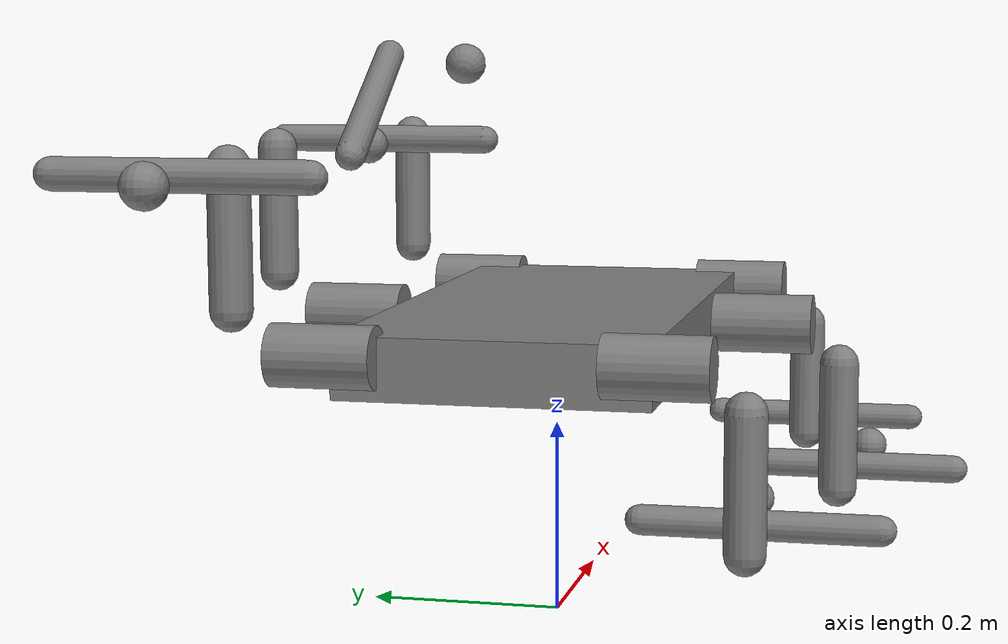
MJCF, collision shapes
<mujoco model="elspider_air">
    <compiler angle="radian" meshdir="../meshes" autolimits="true" />

    <option cone="elliptic" impratio="100" />

    <default>
      <default class="el4">
        <geom friction="0.6" margin="0.001" condim="6"/>
        <joint damping="0.1" armature="0.01" frictionloss="0.2"/>
        <motor ctrlrange="-33.5 33.5"/>
        <default class="haa">
          <joint axis="0 0 1"/>
        </default>
        <default class="hfe">
          <joint axis="0 0 1"/>
        </default>
        <default class="kfe">
          <joint axis="0 0 1"/>
        </default>
        <default class="visual">
          <geom type="mesh" contype="0" conaffinity="0" group="2"/>
        </default>
        <default class="collision">
          <geom group="3"/>
          <default class="foot">
            <geom type="sphere" size="0.02" priority="1" condim="6"
              friction="0.6 0.02 0.01"/>
          </default>
        </default>
      </default>
    </default>

    <asset>
      <material name="metal" rgba=".9 .95 .95 1" />
      <material name="black" rgba="0 0 0 1" />
      <material name="gray" rgba="0.4 0.4 0.4 1" />
      <material name="dark_gray" rgba="0.2 0.2 0.2 1" />

      <!-- Mesh assets for all leg parts -->
      <mesh file="RF_HIP.STL" />
      <mesh file="RF_THIGH.STL" />
      <mesh file="RF_SHANK.STL" />
      <mesh file="RF_FOOT.STL" />

      <mesh file="RM_HIP.STL" />
      <mesh file="RM_THIGH.STL" />
      <mesh file="RM_SHANK.STL" />
      <mesh file="RM_FOOT.STL" />

      <mesh file="RB_HIP.STL" />
      <mesh file="RB_THIGH.STL" />
      <mesh file="RB_SHANK.STL" />
      <mesh file="RB_FOOT.STL" />

      <mesh file="LF_HIP.STL" />
      <mesh file="LF_THIGH.STL" />
      <mesh file="LF_SHANK.STL" />
      <mesh file="LF_FOOT.STL" />

      <mesh file="LM_HIP.STL" />
      <mesh file="LM_THIGH.STL" />
      <mesh file="LM_SHANK.STL" />
      <mesh file="LM_FOOT.STL" />

      <mesh file="LB_HIP.STL" />
      <mesh file="LB_THIGH.STL" />
      <mesh file="LB_SHANK.STL" />
      <mesh file="LB_FOOT.STL" />
    </asset>

    <worldbody>
      <body name="base" pos="0 0 0.3" childclass="el4">
        <inertial pos="0 0 0" mass="5.0" diaginertia="0.1 0.1 0.05" />
        <freejoint />
        <geom type="box" size="0.3 0.15 0.03" class="collision" />
        <site name="imu" pos="0 0 0" />

        <!-- RF leg: Right Front -->
        <body name="RF_HIP" pos="0.3 -0.08 0.011">
          <inertial pos="0 -0.12 0" mass="0.678" diaginertia="0.001 0.001 0.0005" />
          <joint name="RF_HAA" class="haa" range="-1.57 1.57" />
          <geom mesh="RF_HIP" material="gray" class="visual" />
          <geom type="cylinder" size="0.03 0.05" pos="0 -0.075 0" quat="0.707107 0.707107 0 0" class="collision" />
          <body name="RF_THIGH" pos="0.0355 -0.14999 -0.045056" quat="0 -0.707107 0 0.707107">
            <inertial pos="0.114 0 0" mass="1.152" diaginertia="0.006 0.006 0.001" />
            <joint name="RF_HFE" class="hfe" range="-1.57 1.57" />
            <geom mesh="RF_THIGH" material="gray" class="visual" />
            <geom type="capsule" size="0.02 0.065" pos="0.065 0 0" quat="0.707107 0 0.707107 0" class="collision" />
            <body name="RF_SHANK" pos="0.13 0 0" quat="0 0 0.707107 0.707107">
              <inertial pos="0 -0.07 0" mass="0.241" diaginertia="0.0015 0.0015 0.0001" />
              <joint name="RF_KFE" class="kfe" range="-2.8 2.8" />
              <geom mesh="RF_SHANK" material="gray" class="visual" />
              <geom type="capsule" size="0.015 0.116" pos="0 -0.116 0" class="collision" />
              <body name="RF_FOOT" pos="0 -0.232 0.018">
                <inertial pos="0 0 0" mass="0.05" diaginertia="0.0001 0.0001 0.0001" />
                <geom mesh="RF_FOOT" material="dark_gray" class="visual" />
                <geom name="RF_foot" class="foot" pos="0 0 0" />
              </body>
            </body>
          </body>
        </body>

        <!-- RM leg: Right Middle -->
        <body name="RM_HIP" pos="0 -0.14 0.011">
          <inertial pos="0 -0.12 0" mass="0.678" diaginertia="0.001 0.001 0.0005" />
          <joint name="RM_HAA" class="haa" range="-1.57 1.57" />
          <geom mesh="RM_HIP" material="gray" class="visual" />
          <geom type="cylinder" size="0.03 0.05" pos="0 -0.075 0" quat="0.707107 0.707107 0 0" class="collision" />
          <body name="RM_THIGH" pos="0.0355 -0.14999 -0.045056" quat="0 -0.707107 0 0.707107">
            <inertial pos="0.114 0 0" mass="1.152" diaginertia="0.006 0.006 0.001" />
            <joint name="RM_HFE" class="hfe" range="-1.57 1.57" />
            <geom mesh="RM_THIGH" material="gray" class="visual" />
            <geom type="capsule" size="0.02 0.065" pos="0.065 0 0" quat="0.707107 0 0.707107 0" class="collision" />
            <body name="RM_SHANK" pos="0.13 0 0" quat="0 0 0.707107 0.707107">
              <inertial pos="0 -0.07 0" mass="0.241" diaginertia="0.0015 0.0015 0.0001" />
              <joint name="RM_KFE" class="kfe" range="-2.8 2.8" />
              <geom mesh="RM_SHANK" material="gray" class="visual" />
              <geom type="capsule" size="0.015 0.116" pos="0 -0.116 0" class="collision" />
              <body name="RM_FOOT" pos="0 -0.232 0.018">
                <inertial pos="0 0 0" mass="0.05" diaginertia="0.0001 0.0001 0.0001" />
                <geom mesh="RM_FOOT" material="dark_gray" class="visual" />
                <geom name="RM_foot" class="foot" pos="0 0 0" />
              </body>
            </body>
          </body>
        </body>

        <!-- RB leg: Right Back -->
        <body name="RB_HIP" pos="-0.3 -0.08 0.011">
          <inertial pos="0 -0.12 0" mass="0.678" diaginertia="0.001 0.001 0.0005" />
          <joint name="RB_HAA" class="haa" range="-1.57 1.57" />
          <geom mesh="RB_HIP" material="gray" class="visual" />
          <geom type="cylinder" size="0.03 0.05" pos="0 -0.075 0" quat="0.707107 0.707107 0 0" class="collision" />
          <body name="RB_THIGH" pos="0.0355 -0.14999 -0.045056" quat="0 -0.707107 0 0.707107">
            <inertial pos="0.114 0 0" mass="1.152" diaginertia="0.006 0.006 0.001" />
            <joint name="RB_HFE" class="hfe" range="-1.57 1.57" />
            <geom mesh="RB_THIGH" material="gray" class="visual" />
            <geom type="capsule" size="0.02 0.065" pos="0.065 0 0" quat="0.707107 0 0.707107 0" class="collision" />
            <body name="RB_SHANK" pos="0.13 0 0" quat="0 0 0.707107 0.707107">
              <inertial pos="0 -0.07 0" mass="0.241" diaginertia="0.0015 0.0015 0.0001" />
              <joint name="RB_KFE" class="kfe" range="-2.8 2.8" />
              <geom mesh="RB_SHANK" material="gray" class="visual" />
              <geom type="capsule" size="0.015 0.116" pos="0 -0.116 0" class="collision" />
              <body name="RB_FOOT" pos="0 -0.232 -0.018">
                <inertial pos="0 0 0" mass="0.05" diaginertia="0.0001 0.0001 0.0001" />
                <geom mesh="RB_FOOT" material="dark_gray" class="visual" />
                <geom name="RB_foot" class="foot" pos="0 0 0" />
              </body>
            </body>
          </body>
        </body>

        <!-- LF leg: Left Front -->
        <body name="LF_HIP" pos="0.3 0.08 0.011" quat="0 0 0 1">
          <inertial pos="0 -0.12 0" mass="0.678" diaginertia="0.001 0.001 0.0005" />
          <joint name="LF_HAA" class="haa" range="-1.57 1.57" />
          <geom mesh="LF_HIP" material="gray" class="visual" />
          <geom type="cylinder" size="0.03 0.05" pos="0 -0.075 0" quat="0.707107 0.707107 0 0" class="collision" />
          <body name="LF_THIGH" pos="0.0355 -0.14999 0.045056" quat="0 0.707107 0 0.707107">
            <inertial pos="0.114 0 0" mass="1.152" diaginertia="0.006 0.006 0.001" />
            <joint name="LF_HFE" class="hfe" range="-1.57 1.57" />
            <geom mesh="LF_THIGH" material="gray" class="visual" />
            <geom type="capsule" size="0.02 0.065" pos="0.065 0 0" quat="0.707107 0 0.707107 0" class="collision" />
            <body name="LF_SHANK" pos="0.13 0 0" quat="0 0 -0.707107 0.707107">
              <inertial pos="0 -0.07 0" mass="0.241" diaginertia="0.0015 0.0015 0.0001" />
              <joint name="LF_KFE" class="kfe" range="-2.8 2.8" />
              <geom mesh="LF_SHANK" material="gray" class="visual" />
              <geom type="capsule" size="0.015 0.116" pos="0 -0.116 0" class="collision" />
              <body name="LF_FOOT" pos="0 -0.232 0.018" quat="0 0 1 0">
                <inertial pos="0 0 0" mass="0.05" diaginertia="0.0001 0.0001 0.0001" />
                <geom mesh="LF_FOOT" material="dark_gray" class="visual" />
                <geom name="LF_foot" class="foot" pos="0 0 0" />
              </body>
            </body>
          </body>
        </body>

        <!-- LM leg: Left Middle -->
        <body name="LM_HIP" pos="0 0.14 0.011" quat="0 0 0 1">
          <inertial pos="0 -0.12 0" mass="0.678" diaginertia="0.001 0.001 0.0005" />
          <joint name="LM_HAA" class="haa" range="-1.57 1.57" />
          <geom mesh="LM_HIP" material="gray" class="visual" />
          <geom type="cylinder" size="0.03 0.05" pos="0 -0.075 0" quat="0.707107 0.707107 0 0" class="collision" />
          <body name="LM_THIGH" pos="0.0355 -0.14999 0.045056" quat="0 0.707107 0 0.707107">
            <inertial pos="0.114 0 0" mass="1.152" diaginertia="0.006 0.006 0.001" />
            <joint name="LM_HFE" class="hfe" range="-1.57 1.57" />
            <geom mesh="LM_THIGH" material="gray" class="visual" />
            <geom type="capsule" size="0.02 0.065" pos="0.065 0 0" quat="0.707107 0 0.707107 0" class="collision" />
            <body name="LM_SHANK" pos="0.13 0 0" quat="3.14159 0 -0.707107 0.707107">
              <inertial pos="0 -0.07 0" mass="0.241" diaginertia="0.0015 0.0015 0.0001" />
              <joint name="LM_KFE" class="kfe" range="-2.8 2.8" />
              <geom mesh="LM_SHANK" material="gray" class="visual" />
              <geom type="capsule" size="0.015 0.116" pos="0 -0.116 0" class="collision" />
              <body name="LM_FOOT" pos="0 -0.232 0.018" quat="0 3.14159 0 0">
                <inertial pos="0 0 0" mass="0.05" diaginertia="0.0001 0.0001 0.0001" />
                <geom mesh="LM_FOOT" material="dark_gray" class="visual" />
                <geom name="LM_foot" class="foot" pos="0 0 0" />
              </body>
            </body>
          </body>
        </body>

        <!-- LB leg: Left Back -->
        <body name="LB_HIP" pos="-0.3 0.08 0.011" quat="0 0 0 1">
          <inertial pos="0 -0.12 0" mass="0.678" diaginertia="0.001 0.001 0.0005" />
          <joint name="LB_HAA" class="haa" range="-1.57 1.57" />
          <geom mesh="LB_HIP" material="gray" class="visual" />
          <geom type="cylinder" size="0.03 0.05" pos="0 -0.075 0" quat="0.707107 0.707107 0 0" class="collision" />
          <body name="LB_THIGH" pos="0.0355 -0.14999 0.045056" quat="0 0.707107 0 0.707107">
            <inertial pos="0.114 0 0" mass="1.152" diaginertia="0.006 0.006 0.001" />
            <joint name="LB_HFE" class="hfe" range="-1.57 1.57" />
            <geom mesh="LB_THIGH" material="gray" class="visual" />
            <geom type="capsule" size="0.02 0.065" pos="0.065 0 0" quat="0.707107 0 0.707107 0" class="collision" />
            <body name="LB_SHANK" pos="0.13 0 0" quat="0 0 -0.707107 0.707107">
              <inertial pos="0 -0.07 0" mass="0.241" diaginertia="0.0015 0.0015 0.0001" />
              <joint name="LB_KFE" class="kfe" range="-2.8 2.8" />
              <geom mesh="LB_SHANK" material="gray" class="visual" />
              <geom type="capsule" size="0.015 0.116" pos="0 -0.116 0" class="collision" />
              <body name="LB_FOOT" pos="0 -0.232 0.018" quat="0 0 1 0">
                <inertial pos="0 0 0" mass="0.05" diaginertia="0.0001 0.0001 0.0001" />
                <geom mesh="LB_FOOT" material="dark_gray" class="visual" />
                <geom name="LB_foot" class="foot" pos="0 0 0" />
              </body>
            </body>
          </body>
        </body>

      </body>
    </worldbody>

    <actuator>
      <motor name="RF_HAA" joint="RF_HAA" />
      <motor name="RF_HFE" joint="RF_HFE" />
      <motor name="RF_KFE" joint="RF_KFE" />
      <motor name="RM_HAA" joint="RM_HAA" />
      <motor name="RM_HFE" joint="RM_HFE" />
      <motor name="RM_KFE" joint="RM_KFE" />
      <motor name="RB_HAA" joint="RB_HAA" />
      <motor name="RB_HFE" joint="RB_HFE" />
      <motor name="RB_KFE" joint="RB_KFE" />
      <motor name="LF_HAA" joint="LF_HAA" />
      <motor name="LF_HFE" joint="LF_HFE" />
      <motor name="LF_KFE" joint="LF_KFE" />
      <motor name="LM_HAA" joint="LM_HAA" />
      <motor name="LM_HFE" joint="LM_HFE" />
      <motor name="LM_KFE" joint="LM_KFE" />
      <motor name="LB_HAA" joint="LB_HAA" />
      <motor name="LB_HFE" joint="LB_HFE" />
      <motor name="LB_KFE" joint="LB_KFE" />
    </actuator>

    <sensor>
      <jointpos name="RF_HAA_pos" joint="RF_HAA" />
      <jointpos name="RF_HFE_pos" joint="RF_HFE" />
      <jointpos name="RF_KFE_pos" joint="RF_KFE" />
      <jointpos name="RM_HAA_pos" joint="RM_HAA" />
      <jointpos name="RM_HFE_pos" joint="RM_HFE" />
      <jointpos name="RM_KFE_pos" joint="RM_KFE" />
      <jointpos name="RB_HAA_pos" joint="RB_HAA" />
      <jointpos name="RB_HFE_pos" joint="RB_HFE" />
      <jointpos name="RB_KFE_pos" joint="RB_KFE" />
      <jointpos name="LF_HAA_pos" joint="LF_HAA" />
      <jointpos name="LF_HFE_pos" joint="LF_HFE" />
      <jointpos name="LF_KFE_pos" joint="LF_KFE" />
      <jointpos name="LM_HAA_pos" joint="LM_HAA" />
      <jointpos name="LM_HFE_pos" joint="LM_HFE" />
      <jointpos name="LM_KFE_pos" joint="LM_KFE" />
      <jointpos name="LB_HAA_pos" joint="LB_HAA" />
      <jointpos name="LB_HFE_pos" joint="LB_HFE" />
      <jointpos name="LB_KFE_pos" joint="LB_KFE" />

      <jointvel name="RF_HAA_vel" joint="RF_HAA" />
      <jointvel name="RF_HFE_vel" joint="RF_HFE" />
      <jointvel name="RF_KFE_vel" joint="RF_KFE" />
      <jointvel name="RM_HAA_vel" joint="RM_HAA" />
      <jointvel name="RM_HFE_vel" joint="RM_HFE" />
      <jointvel name="RM_KFE_vel" joint="RM_KFE" />
      <jointvel name="RB_HAA_vel" joint="RB_HAA" />
      <jointvel name="RB_HFE_vel" joint="RB_HFE" />
      <jointvel name="RB_KFE_vel" joint="RB_KFE" />
      <jointvel name="LF_HAA_vel" joint="LF_HAA" />
      <jointvel name="LF_HFE_vel" joint="LF_HFE" />
      <jointvel name="LF_KFE_vel" joint="LF_KFE" />
      <jointvel name="LM_HAA_vel" joint="LM_HAA" />
      <jointvel name="LM_HFE_vel" joint="LM_HFE" />
      <jointvel name="LM_KFE_vel" joint="LM_KFE" />
      <jointvel name="LB_HAA_vel" joint="LB_HAA" />
      <jointvel name="LB_HFE_vel" joint="LB_HFE" />
      <jointvel name="LB_KFE_vel" joint="LB_KFE" />

      <jointactuatorfrc name="RF_HAA_torque" joint="RF_HAA" noise="0.01" />
      <jointactuatorfrc name="RF_HFE_torque" joint="RF_HFE" noise="0.01" />
      <jointactuatorfrc name="RF_KFE_torque" joint="RF_KFE" noise="0.01" />
      <jointactuatorfrc name="RM_HAA_torque" joint="RM_HAA" noise="0.01" />
      <jointactuatorfrc name="RM_HFE_torque" joint="RM_HFE" noise="0.01" />
      <jointactuatorfrc name="RM_KFE_torque" joint="RM_KFE" noise="0.01" />
      <jointactuatorfrc name="RB_HAA_torque" joint="RB_HAA" noise="0.01" />
      <jointactuatorfrc name="RB_HFE_torque" joint="RB_HFE" noise="0.01" />
      <jointactuatorfrc name="RB_KFE_torque" joint="RB_KFE" noise="0.01" />
      <jointactuatorfrc name="LF_HAA_torque" joint="LF_HAA" noise="0.01" />
      <jointactuatorfrc name="LF_HFE_torque" joint="LF_HFE" noise="0.01" />
      <jointactuatorfrc name="LF_KFE_torque" joint="LF_KFE" noise="0.01" />
      <jointactuatorfrc name="LM_HAA_torque" joint="LM_HAA" noise="0.01" />
      <jointactuatorfrc name="LM_HFE_torque" joint="LM_HFE" noise="0.01" />
      <jointactuatorfrc name="LM_KFE_torque" joint="LM_KFE" noise="0.01" />
      <jointactuatorfrc name="LB_HAA_torque" joint="LB_HAA" noise="0.01" />
      <jointactuatorfrc name="LB_HFE_torque" joint="LB_HFE" noise="0.01" />
      <jointactuatorfrc name="LB_KFE_torque" joint="LB_KFE" noise="0.01" />

      <framequat name="imu_quat" objtype="site" objname="imu" />
      <gyro name="imu_gyro" site="imu" />
      <accelerometer name="imu_acc" site="imu" />

      <framepos name="frame_pos" objtype="site" objname="imu" />
      <framelinvel name="frame_vel" objtype="site" objname="imu" />
    </sensor>

    <keyframe>
      <key name="home" qpos="0 0 0.3 1 0 0 0 0 0 0 0 0 0 0 0 0 0 0 0 0 0 0 0 0 0"
        ctrl="0 0 0 0 0 0 0 0 0 0 0 0 0 0 0 0 0 0" />
    </keyframe>
  </mujoco>
